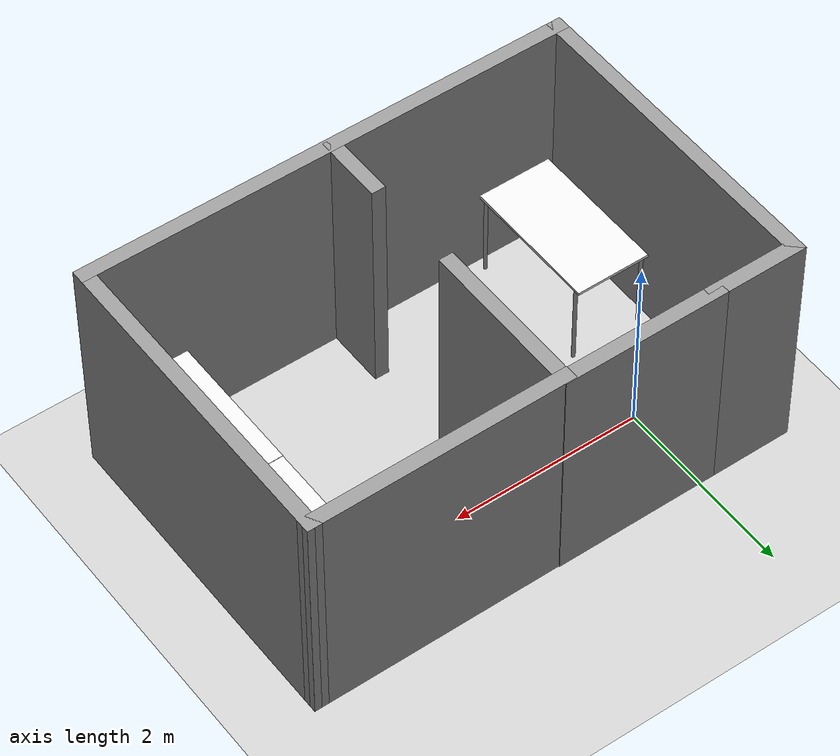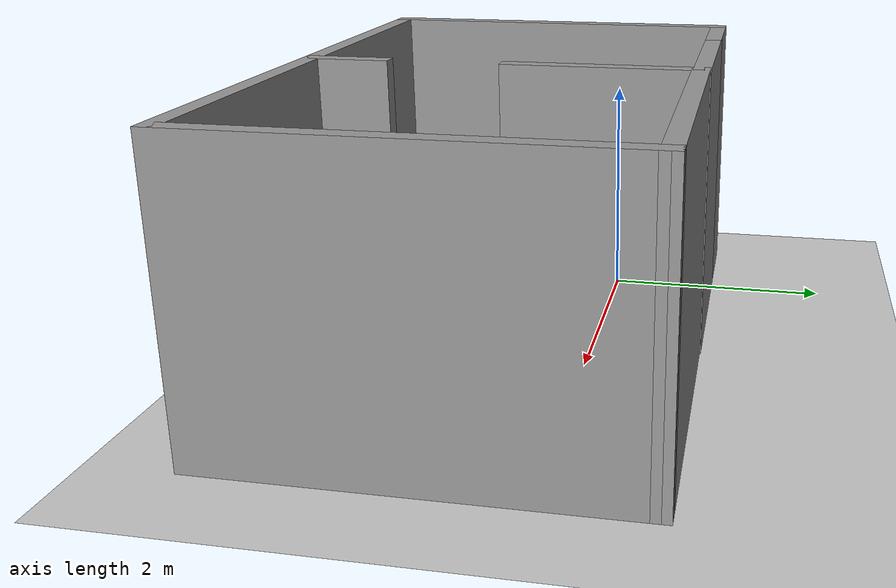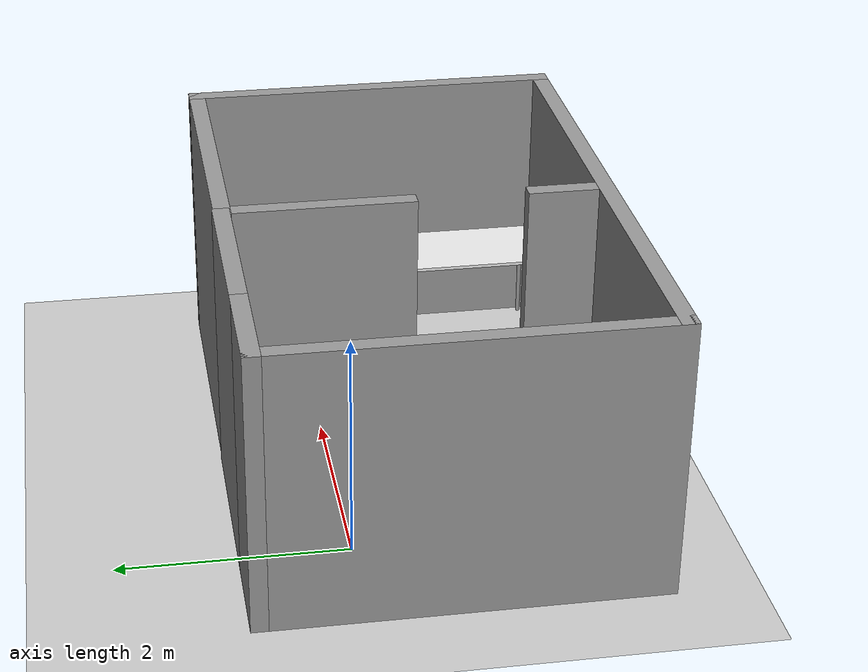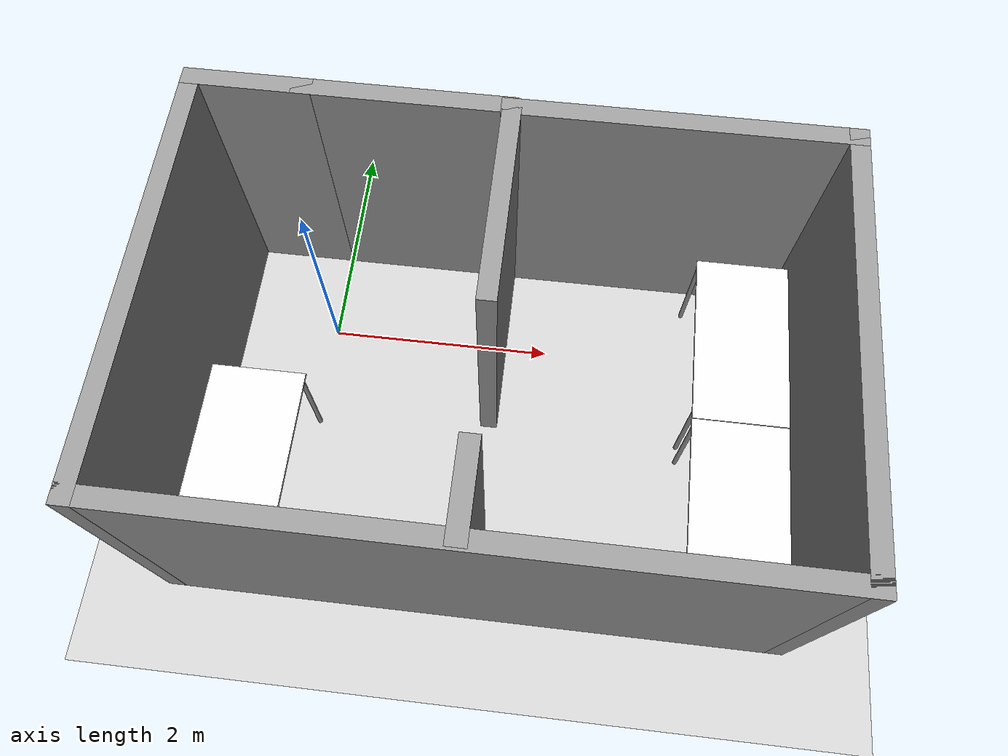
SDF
<sdf version="1.6">
 <world name="default">
  <model name="ground_plane">
   <static>1</static>
   <link name="link">
    <collision name="collision">
     <geometry><plane><normal>0 0 1</normal><size>100 100</size></plane></geometry>
     <surface><friction><ode><mu>100</mu><mu2>50</mu2></ode></friction></surface>
    </collision>
    <visual name="visual">
     <cast_shadows>0</cast_shadows>
     <geometry><plane><normal>0 0 1</normal><size>100 100</size></plane></geometry>
     <material>
      <script><uri>file://media/materials/scripts/gazebo.material</uri><name>Gazebo/Grey</name></script>
     </material>
    </visual>
    <velocity_decay><linear>0</linear><angular>0</angular></velocity_decay>
   </link>
  </model>
  <light name="sun" type="directional">
   <pose>0 0 10 0 -0 0</pose>
   <diffuse>0.8 0.8 0.8 1</diffuse>
   <specular>0.2 0.2 0.2 1</specular>
   <attenuation>
    <range>1000</range>
    <constant>0.9</constant>
    <linear>0.01</linear>
    <quadratic>0.001</quadratic>
   </attenuation>
   <direction>-0.5 0.1 -0.9</direction>
  </light>
  <physics name="default_physics" default="0" type="ode">
   <max_step_size>0.001</max_step_size>
   <real_time_factor>1</real_time_factor>
   <real_time_update_rate>1000</real_time_update_rate>
  </physics>
  <scene><ambient>0.6 0.6 0.6 1</ambient><background>0.7 0.7 0.7 1</background><shadows>0</shadows></scene>
  <spherical_coordinates>
   <surface_model>EARTH_WGS84</surface_model>
   <latitude_deg>0</latitude_deg>
   <longitude_deg>0</longitude_deg>
   <elevation>0</elevation>
   <heading_deg>0</heading_deg>
  </spherical_coordinates>
  <model name="table_white">
   <static>1</static>
   <link name="link">
    <collision name="surface">
     <pose>0 0 0.93 0 -0 0</pose>
     <geometry><box><size>1.5 0.8 0.03</size></box></geometry>
     <surface><friction><ode><mu>0.6</mu><mu2>0.6</mu2></ode></friction></surface>
    </collision>
    <visual name="visual1">
     <pose>0 0 0.93 0 -0 0</pose>
     <geometry><box><size>1.5 0.8 0.03</size></box></geometry>
     <material>
      <script><uri>file://media/materials/scripts/gazebo.material</uri><name>Gazebo/WhiteGlow</name></script>
     </material>
    </visual>
    <collision name="front_left_leg">
     <pose>0.68 0.38 0.35 0 -0 0</pose>
     <geometry><cylinder><radius>0.02</radius><length>0.915</length></cylinder></geometry>
    </collision>
    <visual name="front_left_leg">
     <pose>0.68 0.38 0.4575 0 -0 0</pose>
     <geometry><cylinder><radius>0.02</radius><length>0.915</length></cylinder></geometry>
     <material>
      <script><uri>file://media/materials/scripts/gazebo.material</uri><name>Gazebo/Grey</name></script>
     </material>
    </visual>
    <collision name="front_right_leg">
     <pose>0.68 -0.38 0.4575 0 -0 0</pose>
     <geometry><cylinder><radius>0.02</radius><length>0.915</length></cylinder></geometry>
    </collision>
    <visual name="front_right_leg">
     <pose>0.68 -0.38 0.4575 0 -0 0</pose>
     <geometry><cylinder><radius>0.02</radius><length>0.915</length></cylinder></geometry>
     <material>
      <script><uri>file://media/materials/scripts/gazebo.material</uri><name>Gazebo/Grey</name></script>
     </material>
    </visual>
    <collision name="back_right_leg">
     <pose>-0.68 -0.38 0.4575 0 -0 0</pose>
     <geometry><cylinder><radius>0.02</radius><length>0.915</length></cylinder></geometry>
    </collision>
    <visual name="back_right_leg">
     <pose>-0.68 -0.38 0.4575 0 -0 0</pose>
     <geometry><cylinder><radius>0.02</radius><length>0.915</length></cylinder></geometry>
     <material>
      <script><uri>file://media/materials/scripts/gazebo.material</uri><name>Gazebo/Grey</name></script>
     </material>
    </visual>
    <collision name="back_left_leg">
     <pose>-0.68 0.38 0.4575 0 -0 0</pose>
     <geometry><cylinder><radius>0.02</radius><length>0.915</length></cylinder></geometry>
    </collision>
    <visual name="back_left_leg">
     <pose>-0.68 0.38 0.4575 0 -0 0</pose>
     <geometry><cylinder><radius>0.02</radius><length>0.915</length></cylinder></geometry>
     <material>
      <script><uri>file://media/materials/scripts/gazebo.material</uri><name>Gazebo/Grey</name></script>
     </material>
    </visual>
    <velocity_decay><linear>0</linear><angular>0</angular></velocity_decay>
   </link>
   <pose>3.65112 -0.123058 0 0 -0 1.57159</pose>
  </model>
  <gravity>0 0 -9.8</gravity>
  <magnetic_field>6e-06 2.3e-05 -4.2e-05</magnetic_field>
  <atmosphere type="adiabatic"/>
  <audio><device>default</device></audio>
  <model name="simple_map">
   <pose>1.60449 -0.788095 0 0 -0 0</pose>
   <link name="Wall_11">
    <collision name="Wall_11_Collision">
     <geometry><box><size>0.75 0.15 2.5</size></box></geometry>
     <pose>0 0 1.25 0 -0 0</pose>
    </collision>
    <visual name="Wall_11_Visual">
     <pose>0 0 1.25 0 -0 0</pose>
     <geometry><box><size>0.75 0.15 2.5</size></box></geometry>
     <material>
      <script><uri>file://media/materials/scripts/gazebo.material</uri><name>Gazebo/Grey</name></script>
      <ambient>1 1 1 1</ambient>
     </material>
     <meta><layer>0</layer></meta>
    </visual>
    <pose>-0.04795 -1.35339 0 0 -0 1.5708</pose>
   </link>
   <link name="Wall_2">
    <collision name="Wall_2_Collision">
     <geometry><box><size>1.75 0.15 2.5</size></box></geometry>
     <pose>0 0 1.25 0 -0 0</pose>
    </collision>
    <visual name="Wall_2_Visual">
     <pose>0 0 1.25 0 -0 0</pose>
     <geometry><box><size>1.75 0.15 2.5</size></box></geometry>
     <material>
      <script><uri>file://media/materials/scripts/gazebo.material</uri><name>Gazebo/Grey</name></script>
      <ambient>1 1 1 1</ambient>
     </material>
     <meta><layer>0</layer></meta>
    </visual>
    <pose>-0.890124 1.67488 0 0 -0 0</pose>
   </link>
   <link name="Wall_4">
    <collision name="Wall_4_Collision">
     <geometry><box><size>1.02 0.15 2.5</size></box></geometry>
     <pose>0 0 1.25 0 -0 0</pose>
    </collision>
    <visual name="Wall_4_Visual">
     <pose>0 0 1.25 0 -0 0</pose>
     <geometry><box><size>1.02 0.15 2.5</size></box></geometry>
     <material>
      <script><uri>file://media/materials/scripts/gazebo.material</uri><name>Gazebo/Grey</name></script>
      <ambient>1 1 1 1</ambient>
     </material>
     <meta><layer>0</layer></meta>
    </visual>
    <pose>-2.11512 1.67488 0 0 -0 3.14159</pose>
   </link>
   <link name="Wall_5">
    <collision name="Wall_5_Collision">
     <geometry><box><size>3.5 0.15 2.5</size></box></geometry>
     <pose>0 0 1.25 0 -0 0</pose>
    </collision>
    <visual name="Wall_5_Visual">
     <pose>0 0 1.25 0 -0 0</pose>
     <geometry><box><size>3.5 0.15 2.5</size></box></geometry>
     <material>
      <script><uri>file://media/materials/scripts/gazebo.material</uri><name>Gazebo/Grey</name></script>
      <ambient>1 1 1 1</ambient>
     </material>
     <meta><layer>0</layer></meta>
    </visual>
    <pose>-2.55012 -0.000124 0 0 -0 -1.5708</pose>
   </link>
   <link name="Wall_6">
    <collision name="Wall_6_Collision">
     <geometry><box><size>5.25 0.15 2.5</size></box></geometry>
     <pose>0 0 1.25 0 -0 0</pose>
    </collision>
    <visual name="Wall_6_Visual">
     <pose>0 0 1.25 0 -0 0</pose>
     <geometry><box><size>5.25 0.15 2.5</size></box></geometry>
     <material>
      <script><uri>file://media/materials/scripts/gazebo.material</uri><name>Gazebo/Grey</name></script>
      <ambient>1 1 1 1</ambient>
     </material>
     <meta><layer>0</layer></meta>
    </visual>
    <pose>-0.000124 -1.67512 0 0 -0 0</pose>
   </link>
   <link name="Wall_7">
    <collision name="Wall_7_Collision">
     <geometry><box><size>3.5 0.15 2.5</size></box></geometry>
     <pose>0 0 1.25 0 -0 0</pose>
    </collision>
    <visual name="Wall_7_Visual">
     <pose>0 0 1.25 0 -0 0</pose>
     <geometry><box><size>3.5 0.15 2.5</size></box></geometry>
     <material>
      <script><uri>file://media/materials/scripts/gazebo.material</uri><name>Gazebo/Grey</name></script>
      <ambient>1 1 1 1</ambient>
     </material>
     <meta><layer>0</layer></meta>
    </visual>
    <pose>2.54988 -0.000124 0 0 -0 1.5708</pose>
   </link>
   <link name="Wall_8">
    <collision name="Wall_8_Collision">
     <geometry><box><size>2.76741 0.15 2.5</size></box></geometry>
     <pose>0 0 1.25 0 -0 0</pose>
    </collision>
    <visual name="Wall_8_Visual">
     <pose>0 0 1.25 0 -0 0</pose>
     <geometry><box><size>2.76741 0.15 2.5</size></box></geometry>
     <material>
      <script><uri>file://media/materials/scripts/gazebo.material</uri><name>Gazebo/Grey</name></script>
      <ambient>1 1 1 1</ambient>
     </material>
     <meta><layer>0</layer></meta>
    </visual>
    <pose>1.24118 1.67053 0 0 -0 -3.13827</pose>
   </link>
   <link name="Wall_9">
    <collision name="Wall_9_Collision">
     <geometry><box><size>1.75 0.15 2.5</size></box></geometry>
     <pose>0 0 1.25 0 -0 0</pose>
    </collision>
    <visual name="Wall_9_Visual">
     <pose>0 0 1.25 0 -0 0</pose>
     <geometry><box><size>1.75 0.15 2.5</size></box></geometry>
     <material>
      <script><uri>file://media/materials/scripts/gazebo.material</uri><name>Gazebo/Grey</name></script>
      <ambient>1 1 1 1</ambient>
     </material>
     <meta><layer>0</layer></meta>
    </visual>
    <pose>-0.05882 0.86618 0 0 -0 -1.5708</pose>
   </link>
   <static>1</static>
  </model>
  <model name="table_white_clone">
   <static>1</static>
   <link name="link">
    <collision name="surface">
     <pose>0 0 0.93 0 -0 0</pose>
     <geometry><box><size>1.5 0.8 0.03</size></box></geometry>
     <surface><friction><ode><mu>0.6</mu><mu2>0.6</mu2></ode></friction></surface>
    </collision>
    <visual name="visual1">
     <pose>0 0 0.93 0 -0 0</pose>
     <geometry><box><size>1.5 0.8 0.03</size></box></geometry>
     <material>
      <script><uri>file://media/materials/scripts/gazebo.material</uri><name>Gazebo/WhiteGlow</name></script>
     </material>
    </visual>
    <collision name="front_left_leg">
     <pose>0.68 0.38 0.35 0 -0 0</pose>
     <geometry><cylinder><radius>0.02</radius><length>0.915</length></cylinder></geometry>
    </collision>
    <visual name="front_left_leg">
     <pose>0.68 0.38 0.4575 0 -0 0</pose>
     <geometry><cylinder><radius>0.02</radius><length>0.915</length></cylinder></geometry>
     <material>
      <script><uri>file://media/materials/scripts/gazebo.material</uri><name>Gazebo/Grey</name></script>
     </material>
    </visual>
    <collision name="front_right_leg">
     <pose>0.68 -0.38 0.4575 0 -0 0</pose>
     <geometry><cylinder><radius>0.02</radius><length>0.915</length></cylinder></geometry>
    </collision>
    <visual name="front_right_leg">
     <pose>0.68 -0.38 0.4575 0 -0 0</pose>
     <geometry><cylinder><radius>0.02</radius><length>0.915</length></cylinder></geometry>
     <material>
      <script><uri>file://media/materials/scripts/gazebo.material</uri><name>Gazebo/Grey</name></script>
     </material>
    </visual>
    <collision name="back_right_leg">
     <pose>-0.68 -0.38 0.4575 0 -0 0</pose>
     <geometry><cylinder><radius>0.02</radius><length>0.915</length></cylinder></geometry>
    </collision>
    <visual name="back_right_leg">
     <pose>-0.68 -0.38 0.4575 0 -0 0</pose>
     <geometry><cylinder><radius>0.02</radius><length>0.915</length></cylinder></geometry>
     <material>
      <script><uri>file://media/materials/scripts/gazebo.material</uri><name>Gazebo/Grey</name></script>
     </material>
    </visual>
    <collision name="back_left_leg">
     <pose>-0.68 0.38 0.4575 0 -0 0</pose>
     <geometry><cylinder><radius>0.02</radius><length>0.915</length></cylinder></geometry>
    </collision>
    <visual name="back_left_leg">
     <pose>-0.68 0.38 0.4575 0 -0 0</pose>
     <geometry><cylinder><radius>0.02</radius><length>0.915</length></cylinder></geometry>
     <material>
      <script><uri>file://media/materials/scripts/gazebo.material</uri><name>Gazebo/Grey</name></script>
     </material>
    </visual>
    <velocity_decay><linear>0</linear><angular>0</angular></velocity_decay>
   </link>
   <pose>-0.388043 -1.5951 0 0 0 -1.57</pose>
  </model>
  <model name="table_white_clone_clone_0">
   <static>1</static>
   <link name="link">
    <collision name="surface">
     <pose>0 0 0.93 0 -0 0</pose>
     <geometry><box><size>1.5 0.8 0.03</size></box></geometry>
     <surface><friction><ode><mu>0.6</mu><mu2>0.6</mu2></ode></friction></surface>
    </collision>
    <visual name="visual1">
     <pose>0 0 0.93 0 -0 0</pose>
     <geometry><box><size>1.5 0.8 0.03</size></box></geometry>
     <material>
      <script><uri>file://media/materials/scripts/gazebo.material</uri><name>Gazebo/WhiteGlow</name></script>
     </material>
    </visual>
    <collision name="front_left_leg">
     <pose>0.68 0.38 0.35 0 -0 0</pose>
     <geometry><cylinder><radius>0.02</radius><length>0.915</length></cylinder></geometry>
    </collision>
    <visual name="front_left_leg">
     <pose>0.68 0.38 0.4575 0 -0 0</pose>
     <geometry><cylinder><radius>0.02</radius><length>0.915</length></cylinder></geometry>
     <material>
      <script><uri>file://media/materials/scripts/gazebo.material</uri><name>Gazebo/Grey</name></script>
     </material>
    </visual>
    <collision name="front_right_leg">
     <pose>0.68 -0.38 0.4575 0 -0 0</pose>
     <geometry><cylinder><radius>0.02</radius><length>0.915</length></cylinder></geometry>
    </collision>
    <visual name="front_right_leg">
     <pose>0.68 -0.38 0.4575 0 -0 0</pose>
     <geometry><cylinder><radius>0.02</radius><length>0.915</length></cylinder></geometry>
     <material>
      <script><uri>file://media/materials/scripts/gazebo.material</uri><name>Gazebo/Grey</name></script>
     </material>
    </visual>
    <collision name="back_right_leg">
     <pose>-0.68 -0.38 0.4575 0 -0 0</pose>
     <geometry><cylinder><radius>0.02</radius><length>0.915</length></cylinder></geometry>
    </collision>
    <visual name="back_right_leg">
     <pose>-0.68 -0.38 0.4575 0 -0 0</pose>
     <geometry><cylinder><radius>0.02</radius><length>0.915</length></cylinder></geometry>
     <material>
      <script><uri>file://media/materials/scripts/gazebo.material</uri><name>Gazebo/Grey</name></script>
     </material>
    </visual>
    <collision name="back_left_leg">
     <pose>-0.68 0.38 0.4575 0 -0 0</pose>
     <geometry><cylinder><radius>0.02</radius><length>0.915</length></cylinder></geometry>
    </collision>
    <visual name="back_left_leg">
     <pose>-0.68 0.38 0.4575 0 -0 0</pose>
     <geometry><cylinder><radius>0.02</radius><length>0.915</length></cylinder></geometry>
     <material>
      <script><uri>file://media/materials/scripts/gazebo.material</uri><name>Gazebo/Grey</name></script>
     </material>
    </visual>
    <velocity_decay><linear>0</linear><angular>0</angular></velocity_decay>
   </link>
   <pose>3.64711 -1.6279 0 0 -0 -1.57241</pose>
  </model>
 </world>
</sdf>
